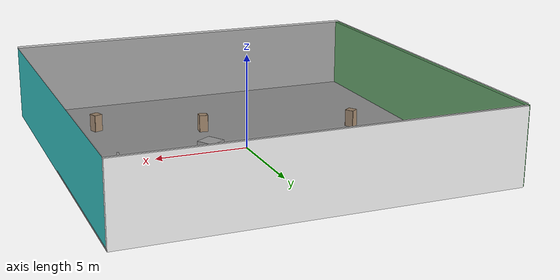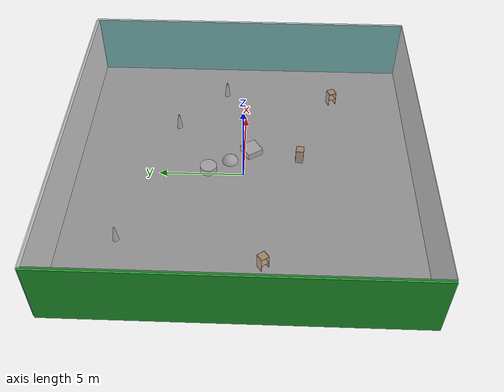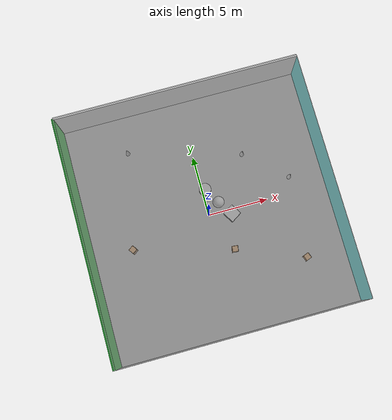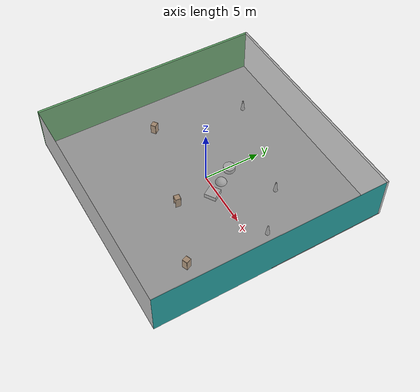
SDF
<sdf version="1.4">
 <world name="default">
  <physics type="ode">
   <max_step_size>0.001</max_step_size>
   <real_time_factor>1</real_time_factor>
   <real_time_update_rate>1000</real_time_update_rate>
   <gravity>0 0 -9.8</gravity>
  </physics>
  <scene><ambient>0.4 0.4 0.4 1</ambient><background>0.7 0.7 0.7 1</background><shadows>1</shadows></scene>
  <model name="Surrounding">
   <static>1</static>
   <link name="Ceiling">
    <collision name="Ceiling_Collision"><geometry><box><size>20 20 0.1</size></box></geometry></collision>
    <visual name="Ceiling_Visual">
     <geometry><box><size>20 20 0.1</size></box></geometry>
     <material>
      <script><uri>file://media/materials/scripts/gazebo.material</uri><name>Gazebo/GreyTransparent</name></script>
     </material>
    </visual>
    <pose>0 0 4.05 0 0 0</pose>
   </link>
   <link name="Wall_South">
    <collision name="Wall_South_Collision">
     <geometry><box><size>20 0 4</size></box></geometry>
     <pose>0 0 2 0 -0 0</pose>
    </collision>
    <visual name="Wall_South_Visual">
     <pose>0 0 2 0 -0 0</pose>
     <geometry><box><size>20 0 4</size></box></geometry>
     <material>
      <script><uri>file://media/materials/scripts/gazebo.material</uri><name>Gazebo/LightOn</name></script>
     </material>
    </visual>
    <velocity_decay><linear>0</linear><angular>0</angular></velocity_decay>
    <pose>0 -10 0 0 -0 0</pose>
   </link>
   <link name="Wall_East">
    <collision name="Wall_21_Collision">
     <geometry><box><size>20 0 4</size></box></geometry>
     <pose>0 0 2 0 -0 0</pose>
    </collision>
    <visual name="Wall_21_Visual">
     <pose>0 0 2 0 -0 0</pose>
     <geometry><box><size>20 0 4</size></box></geometry>
     <material>
      <script><uri>file://media/materials/scripts/gazebo.material</uri><name>Gazebo/Turquoise</name></script>
     </material>
    </visual>
    <velocity_decay><linear>0</linear><angular>0</angular></velocity_decay>
    <pose>10 0 0 0 -0 1.5708</pose>
   </link>
   <link name="Wall_North">
    <collision name="Wall_22_Collision">
     <geometry><box><size>20 0.2 4</size></box></geometry>
     <pose>0 0 2 0 -0 0</pose>
    </collision>
    <visual name="Wall_22_Visual">
     <pose>0 0 2 0 -0 0</pose>
     <geometry><box><size>20 0.2 4</size></box></geometry>
     <material>
      <script><uri>file://media/materials/scripts/gazebo.material</uri><name>Gazebo/WhiteGlow</name></script>
     </material>
    </visual>
    <velocity_decay><linear>0</linear><angular>0</angular></velocity_decay>
    <pose>0 10 0 0 -0 0</pose>
   </link>
   <link name="Wall_West">
    <collision name="Wall_23_Collision">
     <geometry><box><size>20 0.2 4</size></box></geometry>
     <pose>0 0 2 0 -0 0</pose>
    </collision>
    <visual name="Wall_23_Visual">
     <pose>0 0 2 0 -0 0</pose>
     <geometry><box><size>20 0.2 4</size></box></geometry>
     <material>
      <script><uri>file://media/materials/scripts/gazebo.material</uri><name>Gazebo/Green</name></script>
     </material>
    </visual>
    <velocity_decay><linear>0</linear><angular>0</angular></velocity_decay>
    <pose>-10 0 0 0 0 -1.5708</pose>
   </link>
   <link name="Ground_link">
    <collision name="collision">
     <pose>0 0 .05 0 -0 0</pose>
     <geometry><box><size>20 20 0.1</size></box></geometry>
    </collision>
    <visual name="visual">
     <pose>0 0 .05 0 -0 0</pose>
     <geometry><box><size>20 20 0.1</size></box></geometry>
     <material>
      <script><uri>file://media/materials/scripts/gazebo.material</uri><name>Gazebo/GreyGradientSky</name></script>
     </material>
    </visual>
   </link>
   <static>1</static>
  </model>
  <spherical_coordinates>
   <surface_model>EARTH_WGS84</surface_model>
   <latitude_deg>0</latitude_deg>
   <longitude_deg>0</longitude_deg>
   <elevation>0</elevation>
   <heading_deg>0</heading_deg>
  </spherical_coordinates>
  <light name="lightball_0" type="diffuse">
   <diffuse>0.8 0.8 0.8 1</diffuse>
   <specular>0.2 0.2 0.2 1</specular>
   <attenuation>
    <range>100</range>
    <constant>0.7</constant>
    <linear>0.01</linear>
    <quadratic>0.001</quadratic>
   </attenuation>
   <direction>-0.5 0.1 -0.9</direction>
   <pose>-8.884968328 -5.62902883269 1.20764570555 0 0 0</pose>
  </light>
  <light name="lightball_1" type="diffuse">
   <diffuse>0.8 0.8 0.8 1</diffuse>
   <specular>0.2 0.2 0.2 1</specular>
   <attenuation>
    <range>100</range>
    <constant>0.7</constant>
    <linear>0.01</linear>
    <quadratic>0.001</quadratic>
   </attenuation>
   <direction>-0.5 0.1 -0.9</direction>
   <pose>-0.0146205913766 -8.17230544965 2.69695969221 0 0 0</pose>
  </light>
  <light name="lightball_2" type="diffuse">
   <diffuse>0.8 0.8 0.8 1</diffuse>
   <specular>0.2 0.2 0.2 1</specular>
   <attenuation>
    <range>100</range>
    <constant>0.7</constant>
    <linear>0.01</linear>
    <quadratic>0.001</quadratic>
   </attenuation>
   <direction>-0.5 0.1 -0.9</direction>
   <pose>4.2956993546 3.63543112896 1.43998435002 0 0 0</pose>
  </light>
  <light name="lightball_3" type="diffuse">
   <diffuse>0.8 0.8 0.8 1</diffuse>
   <specular>0.2 0.2 0.2 1</specular>
   <attenuation>
    <range>100</range>
    <constant>0.7</constant>
    <linear>0.01</linear>
    <quadratic>0.001</quadratic>
   </attenuation>
   <direction>-0.5 0.1 -0.9</direction>
   <pose>2.6312432187 -1.52234740716 2.82050843598 0 0 0</pose>
  </light>
  <light name="lightball_4" type="diffuse">
   <diffuse>0.8 0.8 0.8 1</diffuse>
   <specular>0.2 0.2 0.2 1</specular>
   <attenuation>
    <range>100</range>
    <constant>0.7</constant>
    <linear>0.01</linear>
    <quadratic>0.001</quadratic>
   </attenuation>
   <direction>-0.5 0.1 -0.9</direction>
   <pose>-2.59870966347 4.71953050138 3.01587724947 0 0 0</pose>
  </light>
  <include><uri>model://cabinet</uri><pose>-6.6736655182 -1.25160827556 0 0 0 0.620193915784</pose></include>
  <include>
   <uri>model://construction_cone</uri>
   <pose>-5.15206163793 6.78029921496 0 0 0 1.47626306493</pose>
  </include>
  <include><uri>model://cabinet</uri><pose>1.28102762704 -3.35392888084 0 0 0 1.44796666645</pose></include>
  <include>
   <uri>model://textured_shapes</uri>
   <pose>1.05994220874 0.835587362592 0 0 0 0.568617542066</pose>
  </include>
  <include>
   <uri>model://construction_cone</uri>
   <pose>4.0036790164 4.19834081288 0 0 0 1.78447518433</pose>
  </include>
  <include><uri>model://cabinet</uri><pose>6.70397243822 -5.50834918116 0 0 0 0.373122130038</pose></include>
  <include>
   <uri>model://construction_cone</uri>
   <pose>7.24843347486 1.31483014065 0 0 0 3.0609129355</pose>
  </include>
 </world>
</sdf>

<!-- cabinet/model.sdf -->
<sdf version="1.5">
  <model name="cabinet">
    <static>true</static>
    <link name="cabinet_bottom_plate">
      <inertial>
        <pose>0 0 -1 0 0 0</pose>
        <inertia>
          <ixx>2.050000</ixx>
          <ixy>0</ixy>
          <ixz>0</ixz>
          <iyy>2.050000</iyy>
          <iyz>0</iyz>
          <izz>2.050000</izz>
        </inertia>
        <mass>25.000000</mass>
      </inertial>
      <collision name="cabinet_bottom_plate_geom">
        <pose>0 0 0.010000 0 0 0</pose>
        <geometry>
          <box>
            <size>0.450000 0.450000 0.020000</size>
          </box>
        </geometry>
      </collision>
      <visual name="cabinet_bottom_plate_geom_visual">
        <pose>0 0 0.010000 0 0 0</pose>
        <geometry>
          <box>
            <size>0.450000 0.450000 0.020000</size>
          </box>
        </geometry>
        <material>
          <script>
            <uri>model://media/materials/scripts/gazebo.material</uri>
            <name>Gazebo/Wood</name>
          </script>
        </material>
      </visual>
      <collision name="cabinet_bottom_plate_geom_cabinet_back_plate">
        <pose>0.235000 0 0.510000 0 0 0</pose>
        <geometry>
          <box>
            <size>0.020000 0.450000 1.020000</size>
          </box>
        </geometry>
      </collision>
      <visual name="cabinet_bottom_plate_geom_cabinet_back_plate_visual">
        <pose>0.235000 0 0.510000 0 0 0</pose>
        <geometry>
          <box>
            <size>0.020000 0.450000 1.020000</size>
          </box>
        </geometry>
        <material>
          <script>
            <uri>model://media/materials/scripts/gazebo.material</uri>
            <name>Gazebo/Wood</name>
          </script>
        </material>
      </visual>
      <collision name="cabinet_bottom_plate_geom_cabinet_left_plate">
        <pose>0 0.235000 0.510000 0 0 0</pose>
        <geometry>
          <box>
            <size>0.450000 0.020000 1.020000</size>
          </box>
        </geometry>
      </collision>
      <visual name="cabinet_bottom_plate_geom_cabinet_left_plate_visual">
        <pose>0 0.235000 0.510000 0 0 0</pose>
        <geometry>
          <box>
            <size>0.450000 0.020000 1.020000</size>
          </box>
        </geometry>
        <material>
          <script>
            <uri>model://media/materials/scripts/gazebo.material</uri>
            <name>Gazebo/Wood</name>
          </script>
        </material>
      </visual>
      <collision name="cabinet_bottom_plate_geom_cabinet_middle_plate">
        <pose>0 0 0.510000 0 0 0</pose>
        <geometry>
          <box>
            <size>0.450000 0.450000 0.020000</size>
          </box>
        </geometry>
      </collision>
      <visual name="cabinet_bottom_plate_geom_cabinet_middle_plate_visual">
        <pose>0 0 0.510000 0 0 0</pose>
        <geometry>
          <box>
            <size>0.450000 0.450000 0.020000</size>
          </box>
        </geometry>
        <material>
          <script>
            <uri>model://media/materials/scripts/gazebo.material</uri>
            <name>Gazebo/Wood</name>
          </script>
        </material>
      </visual>
      <collision name="cabinet_bottom_plate_geom_cabinet_right_plate">
        <pose>0 -0.235000 0.510000 0 0 0</pose>
        <geometry>
          <box>
            <size>0.450000 0.020000 1.020000</size>
          </box>
        </geometry>
      </collision>
      <visual name="cabinet_bottom_plate_geom_cabinet_right_plate_visual">
        <pose>0 -0.235000 0.510000 0 0 0</pose>
        <geometry>
          <box>
            <size>0.450000 0.020000 1.020000</size>
          </box>
        </geometry>
        <material>
          <script>
            <uri>model://media/materials/scripts/gazebo.material</uri>
            <name>Gazebo/Wood</name>
          </script>
        </material>
      </visual>
      <collision name="cabinet_bottom_plate_geom_cabinet_top_plate">
        <pose>0 0 1.010000 0 0 0</pose>
        <geometry>
          <box>
            <size>0.450000 0.450000 0.020000</size>
          </box>
        </geometry>
      </collision>
      <visual name="cabinet_bottom_plate_geom_cabinet_top_plate_visual">
        <pose>0 0 1.010000 0 0 0</pose>
        <geometry>
          <box>
            <size>0.450000 0.450000 0.020000</size>
          </box>
        </geometry>
        <material>
          <script>
            <uri>model://media/materials/scripts/gazebo.material</uri>
            <name>Gazebo/Wood</name>
          </script>
        </material>
      </visual>
    </link>
  </model>
</sdf>

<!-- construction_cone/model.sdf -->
<sdf version="1.5">
  <model name="Construction Cone">
    <link name="link">
      <collision name="collision">
        <geometry>
          <mesh>
            <scale>10 10 10</scale>
            <uri>file://isr-testbed/construction_cone/meshes/construction_cone.dae</uri>
          </mesh>
        </geometry>
      </collision>
      <visual name="visual">
        <geometry>
          <mesh>
            <scale>10 10 10</scale>
            <uri>file://isr-testbed/construction_cone/meshes/construction_cone.dae</uri>
          </mesh>
        </geometry>
      </visual>
    </link>
  </model>
</sdf>

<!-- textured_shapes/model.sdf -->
<sdf version="1.6">
  <model name="textured_shapes">
    <pose>0 0 0.5 0 0 0</pose>
    <link name="box">
      <pose>0 -1.5 0 0 0 0</pose>
      <collision name="collision">
        <geometry>
          <box>
            <size>1 1 1</size>
          </box>
        </geometry>
      </collision>
      <visual name="visual">
        <geometry>
          <box>
            <size>1 1 1</size>
          </box>
        </geometry>
        <material>
          <script>
            <uri>model://../model_source/models/textured_shapes/materials/scripts</uri>
            <uri>model://../model_source/models/textured_shapes/materials/textures</uri>
            <name>TexturedShape/Squares</name>
          </script>
        </material>
      </visual>
    </link>
    <link name="sphere">
      <collision name="collision">
        <geometry>
          <sphere>
            <radius>0.5</radius>
          </sphere>
        </geometry>
      </collision>
      <visual name="visual">
        <geometry>
          <sphere>
            <radius>0.5</radius>
          </sphere>
        </geometry>
        <material>
          <script>
            <uri>model://../model_source/models/textured_shapes/materials/scripts</uri>
            <uri>model://../model_source/models/textured_shapes/materials/textures</uri>
            <name>TexturedShape/Squares</name>
          </script>
        </material>
      </visual>
    </link>
    <link name="cylinder">
      <pose>0 1.5 0 0 0 0</pose>
      <collision name="collision">
        <geometry>
          <cylinder>
            <radius>0.5</radius>
            <length>1</length>
          </cylinder>
        </geometry>
      </collision>
      <visual name="visual">
        <geometry>
          <cylinder>
            <radius>0.5</radius>
            <length>1</length>
          </cylinder>
        </geometry>
        <material>
          <script>
            <uri>model://../model_source/models/textured_shapes/materials/scripts</uri>
            <uri>model://../model_source/models/textured_shapes/materials/textures</uri>
            <name>TexturedShape/Squares</name>
          </script>
        </material>
      </visual>
    </link>
  </model>
</sdf>
